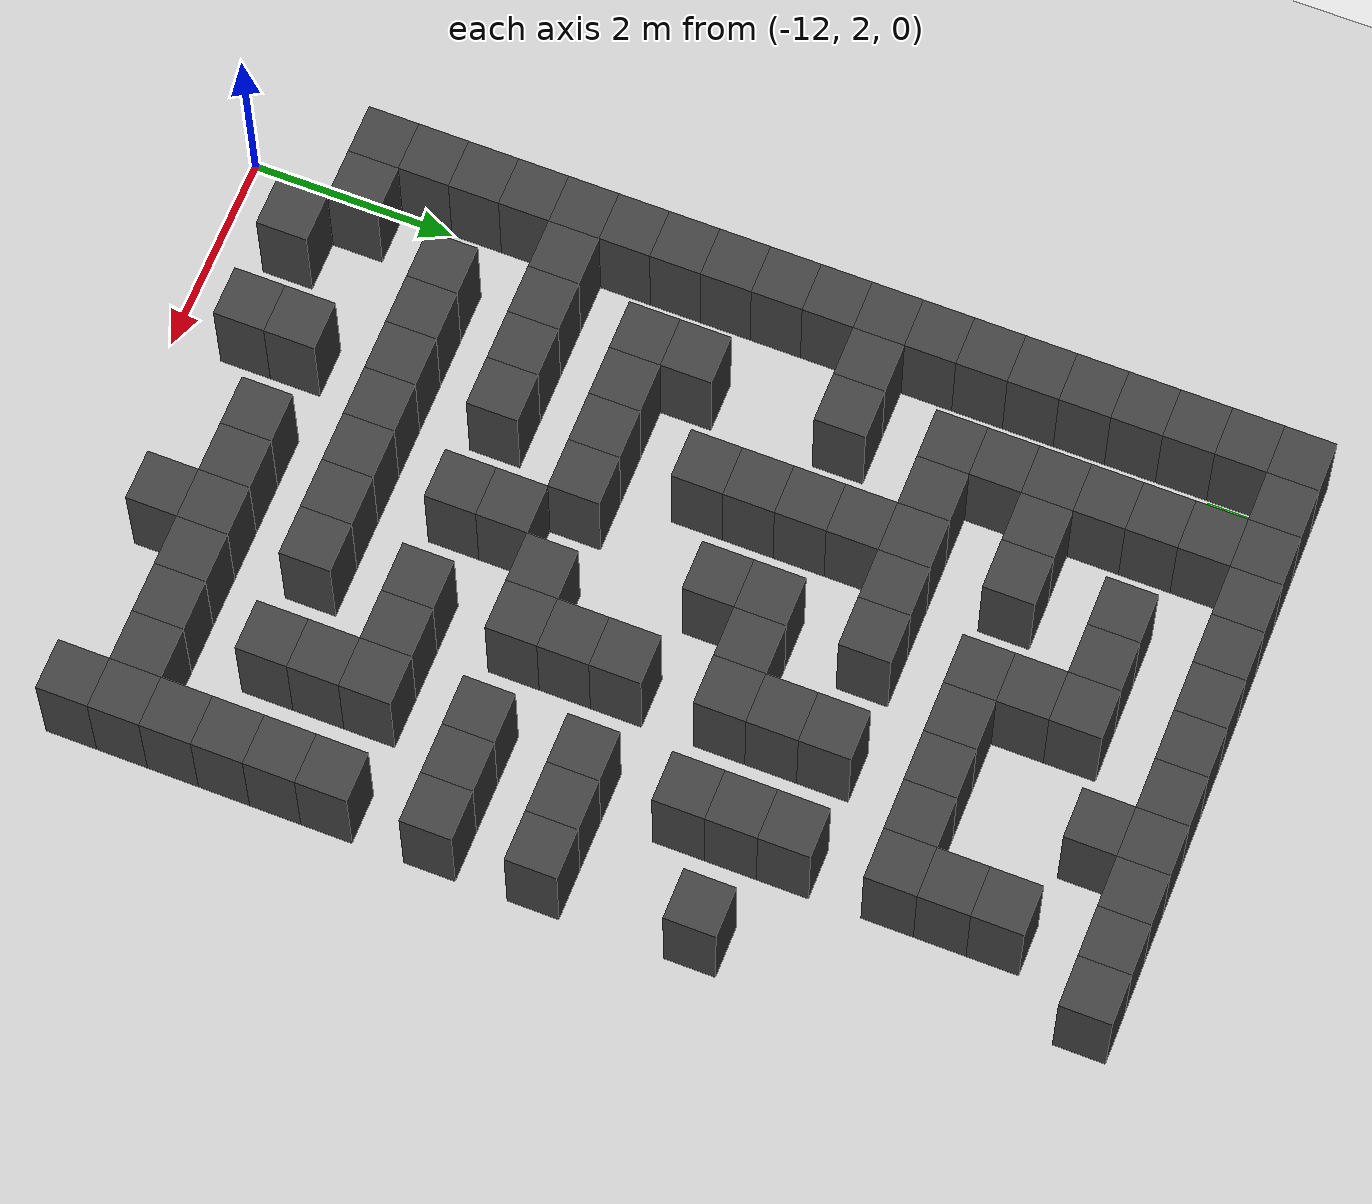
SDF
<sdf version="1.7">
 <world name="map_15293">
  <model name="ground_plane">
   <static>true</static>
   <link name="link">
    <collision name="collision">
     <geometry><plane><normal>0 0 1</normal><size>200 200</size></plane></geometry>
    </collision>
    <visual name="visual">
     <geometry><plane><normal>0 0 1</normal><size>200 200</size></plane></geometry>
     <material><ambient>0.8 0.8 0.8 1</ambient><diffuse>0.8 0.8 0.8 1</diffuse></material>
    </visual>
   </link>
  </model>
  <model name="maze_environment">
   <static>true</static>
   <link name="wall_0">
    <pose>-12.250 12.250 0.500 0 0 0</pose>
    <collision name="col"><geometry><box><size>0.5 0.5 1.0</size></box></geometry></collision>
    <visual name="vis">
     <geometry><box><size>0.5 0.5 1.0</size></box></geometry>
     <material><ambient>0.15 0.15 0.15 1</ambient><diffuse>0.25 0.25 0.25 1</diffuse></material>
    </visual>
   </link>
   <link name="wall_1">
    <pose>-11.750 12.250 0.500 0 0 0</pose>
    <collision name="col"><geometry><box><size>0.5 0.5 1.0</size></box></geometry></collision>
    <visual name="vis">
     <geometry><box><size>0.5 0.5 1.0</size></box></geometry>
     <material><ambient>0.15 0.15 0.15 1</ambient><diffuse>0.25 0.25 0.25 1</diffuse></material>
    </visual>
   </link>
   <link name="wall_2">
    <pose>-11.250 12.250 0.500 0 0 0</pose>
    <collision name="col"><geometry><box><size>0.5 0.5 1.0</size></box></geometry></collision>
    <visual name="vis">
     <geometry><box><size>0.5 0.5 1.0</size></box></geometry>
     <material><ambient>0.15 0.15 0.15 1</ambient><diffuse>0.25 0.25 0.25 1</diffuse></material>
    </visual>
   </link>
   <link name="wall_3">
    <pose>-10.750 12.250 0.500 0 0 0</pose>
    <collision name="col"><geometry><box><size>0.5 0.5 1.0</size></box></geometry></collision>
    <visual name="vis">
     <geometry><box><size>0.5 0.5 1.0</size></box></geometry>
     <material><ambient>0.15 0.15 0.15 1</ambient><diffuse>0.25 0.25 0.25 1</diffuse></material>
    </visual>
   </link>
   <link name="wall_4">
    <pose>-10.250 12.250 0.500 0 0 0</pose>
    <collision name="col"><geometry><box><size>0.5 0.5 1.0</size></box></geometry></collision>
    <visual name="vis">
     <geometry><box><size>0.5 0.5 1.0</size></box></geometry>
     <material><ambient>0.15 0.15 0.15 1</ambient><diffuse>0.25 0.25 0.25 1</diffuse></material>
    </visual>
   </link>
   <link name="wall_5">
    <pose>-9.750 12.250 0.500 0 0 0</pose>
    <collision name="col"><geometry><box><size>0.5 0.5 1.0</size></box></geometry></collision>
    <visual name="vis">
     <geometry><box><size>0.5 0.5 1.0</size></box></geometry>
     <material><ambient>0.15 0.15 0.15 1</ambient><diffuse>0.25 0.25 0.25 1</diffuse></material>
    </visual>
   </link>
   <link name="wall_6">
    <pose>-9.250 12.250 0.500 0 0 0</pose>
    <collision name="col"><geometry><box><size>0.5 0.5 1.0</size></box></geometry></collision>
    <visual name="vis">
     <geometry><box><size>0.5 0.5 1.0</size></box></geometry>
     <material><ambient>0.15 0.15 0.15 1</ambient><diffuse>0.25 0.25 0.25 1</diffuse></material>
    </visual>
   </link>
   <link name="wall_7">
    <pose>-8.750 12.250 0.500 0 0 0</pose>
    <collision name="col"><geometry><box><size>0.5 0.5 1.0</size></box></geometry></collision>
    <visual name="vis">
     <geometry><box><size>0.5 0.5 1.0</size></box></geometry>
     <material><ambient>0.15 0.15 0.15 1</ambient><diffuse>0.25 0.25 0.25 1</diffuse></material>
    </visual>
   </link>
   <link name="wall_8">
    <pose>-8.250 12.250 0.500 0 0 0</pose>
    <collision name="col"><geometry><box><size>0.5 0.5 1.0</size></box></geometry></collision>
    <visual name="vis">
     <geometry><box><size>0.5 0.5 1.0</size></box></geometry>
     <material><ambient>0.15 0.15 0.15 1</ambient><diffuse>0.25 0.25 0.25 1</diffuse></material>
    </visual>
   </link>
   <link name="wall_9">
    <pose>-7.750 12.250 0.500 0 0 0</pose>
    <collision name="col"><geometry><box><size>0.5 0.5 1.0</size></box></geometry></collision>
    <visual name="vis">
     <geometry><box><size>0.5 0.5 1.0</size></box></geometry>
     <material><ambient>0.15 0.15 0.15 1</ambient><diffuse>0.25 0.25 0.25 1</diffuse></material>
    </visual>
   </link>
   <link name="wall_10">
    <pose>-7.250 12.250 0.500 0 0 0</pose>
    <collision name="col"><geometry><box><size>0.5 0.5 1.0</size></box></geometry></collision>
    <visual name="vis">
     <geometry><box><size>0.5 0.5 1.0</size></box></geometry>
     <material><ambient>0.15 0.15 0.15 1</ambient><diffuse>0.25 0.25 0.25 1</diffuse></material>
    </visual>
   </link>
   <link name="wall_11">
    <pose>-6.750 12.250 0.500 0 0 0</pose>
    <collision name="col"><geometry><box><size>0.5 0.5 1.0</size></box></geometry></collision>
    <visual name="vis">
     <geometry><box><size>0.5 0.5 1.0</size></box></geometry>
     <material><ambient>0.15 0.15 0.15 1</ambient><diffuse>0.25 0.25 0.25 1</diffuse></material>
    </visual>
   </link>
   <link name="wall_50">
    <pose>-12.250 11.750 0.500 0 0 0</pose>
    <collision name="col"><geometry><box><size>0.5 0.5 1.0</size></box></geometry></collision>
    <visual name="vis">
     <geometry><box><size>0.5 0.5 1.0</size></box></geometry>
     <material><ambient>0.15 0.15 0.15 1</ambient><diffuse>0.25 0.25 0.25 1</diffuse></material>
    </visual>
   </link>
   <link name="wall_51">
    <pose>-11.250 11.750 0.500 0 0 0</pose>
    <collision name="col"><geometry><box><size>0.5 0.5 1.0</size></box></geometry></collision>
    <visual name="vis">
     <geometry><box><size>0.5 0.5 1.0</size></box></geometry>
     <material><ambient>0.15 0.15 0.15 1</ambient><diffuse>0.25 0.25 0.25 1</diffuse></material>
    </visual>
   </link>
   <link name="wall_52">
    <pose>-8.250 11.750 0.500 0 0 0</pose>
    <collision name="col"><geometry><box><size>0.5 0.5 1.0</size></box></geometry></collision>
    <visual name="vis">
     <geometry><box><size>0.5 0.5 1.0</size></box></geometry>
     <material><ambient>0.15 0.15 0.15 1</ambient><diffuse>0.25 0.25 0.25 1</diffuse></material>
    </visual>
   </link>
   <link name="wall_59">
    <pose>-12.250 11.250 0.500 0 0 0</pose>
    <collision name="col"><geometry><box><size>0.5 0.5 1.0</size></box></geometry></collision>
    <visual name="vis">
     <geometry><box><size>0.5 0.5 1.0</size></box></geometry>
     <material><ambient>0.15 0.15 0.15 1</ambient><diffuse>0.25 0.25 0.25 1</diffuse></material>
    </visual>
   </link>
   <link name="wall_60">
    <pose>-11.250 11.250 0.500 0 0 0</pose>
    <collision name="col"><geometry><box><size>0.5 0.5 1.0</size></box></geometry></collision>
    <visual name="vis">
     <geometry><box><size>0.5 0.5 1.0</size></box></geometry>
     <material><ambient>0.15 0.15 0.15 1</ambient><diffuse>0.25 0.25 0.25 1</diffuse></material>
    </visual>
   </link>
   <link name="wall_61">
    <pose>-10.250 11.250 0.500 0 0 0</pose>
    <collision name="col"><geometry><box><size>0.5 0.5 1.0</size></box></geometry></collision>
    <visual name="vis">
     <geometry><box><size>0.5 0.5 1.0</size></box></geometry>
     <material><ambient>0.15 0.15 0.15 1</ambient><diffuse>0.25 0.25 0.25 1</diffuse></material>
    </visual>
   </link>
   <link name="wall_62">
    <pose>-9.750 11.250 0.500 0 0 0</pose>
    <collision name="col"><geometry><box><size>0.5 0.5 1.0</size></box></geometry></collision>
    <visual name="vis">
     <geometry><box><size>0.5 0.5 1.0</size></box></geometry>
     <material><ambient>0.15 0.15 0.15 1</ambient><diffuse>0.25 0.25 0.25 1</diffuse></material>
    </visual>
   </link>
   <link name="wall_63">
    <pose>-9.250 11.250 0.500 0 0 0</pose>
    <collision name="col"><geometry><box><size>0.5 0.5 1.0</size></box></geometry></collision>
    <visual name="vis">
     <geometry><box><size>0.5 0.5 1.0</size></box></geometry>
     <material><ambient>0.15 0.15 0.15 1</ambient><diffuse>0.25 0.25 0.25 1</diffuse></material>
    </visual>
   </link>
   <link name="wall_64">
    <pose>-7.250 11.250 0.500 0 0 0</pose>
    <collision name="col"><geometry><box><size>0.5 0.5 1.0</size></box></geometry></collision>
    <visual name="vis">
     <geometry><box><size>0.5 0.5 1.0</size></box></geometry>
     <material><ambient>0.15 0.15 0.15 1</ambient><diffuse>0.25 0.25 0.25 1</diffuse></material>
    </visual>
   </link>
   <link name="wall_87">
    <pose>-12.250 10.750 0.500 0 0 0</pose>
    <collision name="col"><geometry><box><size>0.5 0.5 1.0</size></box></geometry></collision>
    <visual name="vis">
     <geometry><box><size>0.5 0.5 1.0</size></box></geometry>
     <material><ambient>0.15 0.15 0.15 1</ambient><diffuse>0.25 0.25 0.25 1</diffuse></material>
    </visual>
   </link>
   <link name="wall_88">
    <pose>-11.250 10.750 0.500 0 0 0</pose>
    <collision name="col"><geometry><box><size>0.5 0.5 1.0</size></box></geometry></collision>
    <visual name="vis">
     <geometry><box><size>0.5 0.5 1.0</size></box></geometry>
     <material><ambient>0.15 0.15 0.15 1</ambient><diffuse>0.25 0.25 0.25 1</diffuse></material>
    </visual>
   </link>
   <link name="wall_89">
    <pose>-9.250 10.750 0.500 0 0 0</pose>
    <collision name="col"><geometry><box><size>0.5 0.5 1.0</size></box></geometry></collision>
    <visual name="vis">
     <geometry><box><size>0.5 0.5 1.0</size></box></geometry>
     <material><ambient>0.15 0.15 0.15 1</ambient><diffuse>0.25 0.25 0.25 1</diffuse></material>
    </visual>
   </link>
   <link name="wall_90">
    <pose>-7.250 10.750 0.500 0 0 0</pose>
    <collision name="col"><geometry><box><size>0.5 0.5 1.0</size></box></geometry></collision>
    <visual name="vis">
     <geometry><box><size>0.5 0.5 1.0</size></box></geometry>
     <material><ambient>0.15 0.15 0.15 1</ambient><diffuse>0.25 0.25 0.25 1</diffuse></material>
    </visual>
   </link>
   <link name="wall_101">
    <pose>-12.250 10.250 0.500 0 0 0</pose>
    <collision name="col"><geometry><box><size>0.5 0.5 1.0</size></box></geometry></collision>
    <visual name="vis">
     <geometry><box><size>0.5 0.5 1.0</size></box></geometry>
     <material><ambient>0.15 0.15 0.15 1</ambient><diffuse>0.25 0.25 0.25 1</diffuse></material>
    </visual>
   </link>
   <link name="wall_102">
    <pose>-11.250 10.250 0.500 0 0 0</pose>
    <collision name="col"><geometry><box><size>0.5 0.5 1.0</size></box></geometry></collision>
    <visual name="vis">
     <geometry><box><size>0.5 0.5 1.0</size></box></geometry>
     <material><ambient>0.15 0.15 0.15 1</ambient><diffuse>0.25 0.25 0.25 1</diffuse></material>
    </visual>
   </link>
   <link name="wall_103">
    <pose>-10.750 10.250 0.500 0 0 0</pose>
    <collision name="col"><geometry><box><size>0.5 0.5 1.0</size></box></geometry></collision>
    <visual name="vis">
     <geometry><box><size>0.5 0.5 1.0</size></box></geometry>
     <material><ambient>0.15 0.15 0.15 1</ambient><diffuse>0.25 0.25 0.25 1</diffuse></material>
    </visual>
   </link>
   <link name="wall_104">
    <pose>-10.250 10.250 0.500 0 0 0</pose>
    <collision name="col"><geometry><box><size>0.5 0.5 1.0</size></box></geometry></collision>
    <visual name="vis">
     <geometry><box><size>0.5 0.5 1.0</size></box></geometry>
     <material><ambient>0.15 0.15 0.15 1</ambient><diffuse>0.25 0.25 0.25 1</diffuse></material>
    </visual>
   </link>
   <link name="wall_105">
    <pose>-9.250 10.250 0.500 0 0 0</pose>
    <collision name="col"><geometry><box><size>0.5 0.5 1.0</size></box></geometry></collision>
    <visual name="vis">
     <geometry><box><size>0.5 0.5 1.0</size></box></geometry>
     <material><ambient>0.15 0.15 0.15 1</ambient><diffuse>0.25 0.25 0.25 1</diffuse></material>
    </visual>
   </link>
   <link name="wall_106">
    <pose>-8.750 10.250 0.500 0 0 0</pose>
    <collision name="col"><geometry><box><size>0.5 0.5 1.0</size></box></geometry></collision>
    <visual name="vis">
     <geometry><box><size>0.5 0.5 1.0</size></box></geometry>
     <material><ambient>0.15 0.15 0.15 1</ambient><diffuse>0.25 0.25 0.25 1</diffuse></material>
    </visual>
   </link>
   <link name="wall_107">
    <pose>-8.250 10.250 0.500 0 0 0</pose>
    <collision name="col"><geometry><box><size>0.5 0.5 1.0</size></box></geometry></collision>
    <visual name="vis">
     <geometry><box><size>0.5 0.5 1.0</size></box></geometry>
     <material><ambient>0.15 0.15 0.15 1</ambient><diffuse>0.25 0.25 0.25 1</diffuse></material>
    </visual>
   </link>
   <link name="wall_108">
    <pose>-7.750 10.250 0.500 0 0 0</pose>
    <collision name="col"><geometry><box><size>0.5 0.5 1.0</size></box></geometry></collision>
    <visual name="vis">
     <geometry><box><size>0.5 0.5 1.0</size></box></geometry>
     <material><ambient>0.15 0.15 0.15 1</ambient><diffuse>0.25 0.25 0.25 1</diffuse></material>
    </visual>
   </link>
   <link name="wall_109">
    <pose>-7.250 10.250 0.500 0 0 0</pose>
    <collision name="col"><geometry><box><size>0.5 0.5 1.0</size></box></geometry></collision>
    <visual name="vis">
     <geometry><box><size>0.5 0.5 1.0</size></box></geometry>
     <material><ambient>0.15 0.15 0.15 1</ambient><diffuse>0.25 0.25 0.25 1</diffuse></material>
    </visual>
   </link>
   <link name="wall_134">
    <pose>-12.250 9.750 0.500 0 0 0</pose>
    <collision name="col"><geometry><box><size>0.5 0.5 1.0</size></box></geometry></collision>
    <visual name="vis">
     <geometry><box><size>0.5 0.5 1.0</size></box></geometry>
     <material><ambient>0.15 0.15 0.15 1</ambient><diffuse>0.25 0.25 0.25 1</diffuse></material>
    </visual>
   </link>
   <link name="wall_135">
    <pose>-11.250 9.750 0.500 0 0 0</pose>
    <collision name="col"><geometry><box><size>0.5 0.5 1.0</size></box></geometry></collision>
    <visual name="vis">
     <geometry><box><size>0.5 0.5 1.0</size></box></geometry>
     <material><ambient>0.15 0.15 0.15 1</ambient><diffuse>0.25 0.25 0.25 1</diffuse></material>
    </visual>
   </link>
   <link name="wall_145">
    <pose>-12.250 9.250 0.500 0 0 0</pose>
    <collision name="col"><geometry><box><size>0.5 0.5 1.0</size></box></geometry></collision>
    <visual name="vis">
     <geometry><box><size>0.5 0.5 1.0</size></box></geometry>
     <material><ambient>0.15 0.15 0.15 1</ambient><diffuse>0.25 0.25 0.25 1</diffuse></material>
    </visual>
   </link>
   <link name="wall_146">
    <pose>-11.250 9.250 0.500 0 0 0</pose>
    <collision name="col"><geometry><box><size>0.5 0.5 1.0</size></box></geometry></collision>
    <visual name="vis">
     <geometry><box><size>0.5 0.5 1.0</size></box></geometry>
     <material><ambient>0.15 0.15 0.15 1</ambient><diffuse>0.25 0.25 0.25 1</diffuse></material>
    </visual>
   </link>
   <link name="wall_147">
    <pose>-10.750 9.250 0.500 0 0 0</pose>
    <collision name="col"><geometry><box><size>0.5 0.5 1.0</size></box></geometry></collision>
    <visual name="vis">
     <geometry><box><size>0.5 0.5 1.0</size></box></geometry>
     <material><ambient>0.15 0.15 0.15 1</ambient><diffuse>0.25 0.25 0.25 1</diffuse></material>
    </visual>
   </link>
   <link name="wall_148">
    <pose>-10.250 9.250 0.500 0 0 0</pose>
    <collision name="col"><geometry><box><size>0.5 0.5 1.0</size></box></geometry></collision>
    <visual name="vis">
     <geometry><box><size>0.5 0.5 1.0</size></box></geometry>
     <material><ambient>0.15 0.15 0.15 1</ambient><diffuse>0.25 0.25 0.25 1</diffuse></material>
    </visual>
   </link>
   <link name="wall_149">
    <pose>-9.750 9.250 0.500 0 0 0</pose>
    <collision name="col"><geometry><box><size>0.5 0.5 1.0</size></box></geometry></collision>
    <visual name="vis">
     <geometry><box><size>0.5 0.5 1.0</size></box></geometry>
     <material><ambient>0.15 0.15 0.15 1</ambient><diffuse>0.25 0.25 0.25 1</diffuse></material>
    </visual>
   </link>
   <link name="wall_150">
    <pose>-9.250 9.250 0.500 0 0 0</pose>
    <collision name="col"><geometry><box><size>0.5 0.5 1.0</size></box></geometry></collision>
    <visual name="vis">
     <geometry><box><size>0.5 0.5 1.0</size></box></geometry>
     <material><ambient>0.15 0.15 0.15 1</ambient><diffuse>0.25 0.25 0.25 1</diffuse></material>
    </visual>
   </link>
   <link name="wall_151">
    <pose>-8.250 9.250 0.500 0 0 0</pose>
    <collision name="col"><geometry><box><size>0.5 0.5 1.0</size></box></geometry></collision>
    <visual name="vis">
     <geometry><box><size>0.5 0.5 1.0</size></box></geometry>
     <material><ambient>0.15 0.15 0.15 1</ambient><diffuse>0.25 0.25 0.25 1</diffuse></material>
    </visual>
   </link>
   <link name="wall_152">
    <pose>-7.250 9.250 0.500 0 0 0</pose>
    <collision name="col"><geometry><box><size>0.5 0.5 1.0</size></box></geometry></collision>
    <visual name="vis">
     <geometry><box><size>0.5 0.5 1.0</size></box></geometry>
     <material><ambient>0.15 0.15 0.15 1</ambient><diffuse>0.25 0.25 0.25 1</diffuse></material>
    </visual>
   </link>
   <link name="wall_177">
    <pose>-12.250 8.750 0.500 0 0 0</pose>
    <collision name="col"><geometry><box><size>0.5 0.5 1.0</size></box></geometry></collision>
    <visual name="vis">
     <geometry><box><size>0.5 0.5 1.0</size></box></geometry>
     <material><ambient>0.15 0.15 0.15 1</ambient><diffuse>0.25 0.25 0.25 1</diffuse></material>
    </visual>
   </link>
   <link name="wall_178">
    <pose>-10.250 8.750 0.500 0 0 0</pose>
    <collision name="col"><geometry><box><size>0.5 0.5 1.0</size></box></geometry></collision>
    <visual name="vis">
     <geometry><box><size>0.5 0.5 1.0</size></box></geometry>
     <material><ambient>0.15 0.15 0.15 1</ambient><diffuse>0.25 0.25 0.25 1</diffuse></material>
    </visual>
   </link>
   <link name="wall_179">
    <pose>-8.250 8.750 0.500 0 0 0</pose>
    <collision name="col"><geometry><box><size>0.5 0.5 1.0</size></box></geometry></collision>
    <visual name="vis">
     <geometry><box><size>0.5 0.5 1.0</size></box></geometry>
     <material><ambient>0.15 0.15 0.15 1</ambient><diffuse>0.25 0.25 0.25 1</diffuse></material>
    </visual>
   </link>
   <link name="wall_180">
    <pose>-7.250 8.750 0.500 0 0 0</pose>
    <collision name="col"><geometry><box><size>0.5 0.5 1.0</size></box></geometry></collision>
    <visual name="vis">
     <geometry><box><size>0.5 0.5 1.0</size></box></geometry>
     <material><ambient>0.15 0.15 0.15 1</ambient><diffuse>0.25 0.25 0.25 1</diffuse></material>
    </visual>
   </link>
   <link name="wall_181">
    <pose>-6.250 8.750 0.500 0 0 0</pose>
    <collision name="col"><geometry><box><size>0.5 0.5 1.0</size></box></geometry></collision>
    <visual name="vis">
     <geometry><box><size>0.5 0.5 1.0</size></box></geometry>
     <material><ambient>0.15 0.15 0.15 1</ambient><diffuse>0.25 0.25 0.25 1</diffuse></material>
    </visual>
   </link>
   <link name="wall_192">
    <pose>-12.250 8.250 0.500 0 0 0</pose>
    <collision name="col"><geometry><box><size>0.5 0.5 1.0</size></box></geometry></collision>
    <visual name="vis">
     <geometry><box><size>0.5 0.5 1.0</size></box></geometry>
     <material><ambient>0.15 0.15 0.15 1</ambient><diffuse>0.25 0.25 0.25 1</diffuse></material>
    </visual>
   </link>
   <link name="wall_193">
    <pose>-11.750 8.250 0.500 0 0 0</pose>
    <collision name="col"><geometry><box><size>0.5 0.5 1.0</size></box></geometry></collision>
    <visual name="vis">
     <geometry><box><size>0.5 0.5 1.0</size></box></geometry>
     <material><ambient>0.15 0.15 0.15 1</ambient><diffuse>0.25 0.25 0.25 1</diffuse></material>
    </visual>
   </link>
   <link name="wall_194">
    <pose>-11.250 8.250 0.500 0 0 0</pose>
    <collision name="col"><geometry><box><size>0.5 0.5 1.0</size></box></geometry></collision>
    <visual name="vis">
     <geometry><box><size>0.5 0.5 1.0</size></box></geometry>
     <material><ambient>0.15 0.15 0.15 1</ambient><diffuse>0.25 0.25 0.25 1</diffuse></material>
    </visual>
   </link>
   <link name="wall_195">
    <pose>-10.250 8.250 0.500 0 0 0</pose>
    <collision name="col"><geometry><box><size>0.5 0.5 1.0</size></box></geometry></collision>
    <visual name="vis">
     <geometry><box><size>0.5 0.5 1.0</size></box></geometry>
     <material><ambient>0.15 0.15 0.15 1</ambient><diffuse>0.25 0.25 0.25 1</diffuse></material>
    </visual>
   </link>
   <link name="wall_196">
    <pose>-9.250 8.250 0.500 0 0 0</pose>
    <collision name="col"><geometry><box><size>0.5 0.5 1.0</size></box></geometry></collision>
    <visual name="vis">
     <geometry><box><size>0.5 0.5 1.0</size></box></geometry>
     <material><ambient>0.15 0.15 0.15 1</ambient><diffuse>0.25 0.25 0.25 1</diffuse></material>
    </visual>
   </link>
   <link name="wall_197">
    <pose>-8.750 8.250 0.500 0 0 0</pose>
    <collision name="col"><geometry><box><size>0.5 0.5 1.0</size></box></geometry></collision>
    <visual name="vis">
     <geometry><box><size>0.5 0.5 1.0</size></box></geometry>
     <material><ambient>0.15 0.15 0.15 1</ambient><diffuse>0.25 0.25 0.25 1</diffuse></material>
    </visual>
   </link>
   <link name="wall_198">
    <pose>-8.250 8.250 0.500 0 0 0</pose>
    <collision name="col"><geometry><box><size>0.5 0.5 1.0</size></box></geometry></collision>
    <visual name="vis">
     <geometry><box><size>0.5 0.5 1.0</size></box></geometry>
     <material><ambient>0.15 0.15 0.15 1</ambient><diffuse>0.25 0.25 0.25 1</diffuse></material>
    </visual>
   </link>
   <link name="wall_199">
    <pose>-7.250 8.250 0.500 0 0 0</pose>
    <collision name="col"><geometry><box><size>0.5 0.5 1.0</size></box></geometry></collision>
    <visual name="vis">
     <geometry><box><size>0.5 0.5 1.0</size></box></geometry>
     <material><ambient>0.15 0.15 0.15 1</ambient><diffuse>0.25 0.25 0.25 1</diffuse></material>
    </visual>
   </link>
   <link name="wall_223">
    <pose>-12.250 7.750 0.500 0 0 0</pose>
    <collision name="col"><geometry><box><size>0.5 0.5 1.0</size></box></geometry></collision>
    <visual name="vis">
     <geometry><box><size>0.5 0.5 1.0</size></box></geometry>
     <material><ambient>0.15 0.15 0.15 1</ambient><diffuse>0.25 0.25 0.25 1</diffuse></material>
    </visual>
   </link>
   <link name="wall_224">
    <pose>-10.250 7.750 0.500 0 0 0</pose>
    <collision name="col"><geometry><box><size>0.5 0.5 1.0</size></box></geometry></collision>
    <visual name="vis">
     <geometry><box><size>0.5 0.5 1.0</size></box></geometry>
     <material><ambient>0.15 0.15 0.15 1</ambient><diffuse>0.25 0.25 0.25 1</diffuse></material>
    </visual>
   </link>
   <link name="wall_225">
    <pose>-9.250 7.750 0.500 0 0 0</pose>
    <collision name="col"><geometry><box><size>0.5 0.5 1.0</size></box></geometry></collision>
    <visual name="vis">
     <geometry><box><size>0.5 0.5 1.0</size></box></geometry>
     <material><ambient>0.15 0.15 0.15 1</ambient><diffuse>0.25 0.25 0.25 1</diffuse></material>
    </visual>
   </link>
   <link name="wall_239">
    <pose>-12.250 7.250 0.500 0 0 0</pose>
    <collision name="col"><geometry><box><size>0.5 0.5 1.0</size></box></geometry></collision>
    <visual name="vis">
     <geometry><box><size>0.5 0.5 1.0</size></box></geometry>
     <material><ambient>0.15 0.15 0.15 1</ambient><diffuse>0.25 0.25 0.25 1</diffuse></material>
    </visual>
   </link>
   <link name="wall_240">
    <pose>-10.250 7.250 0.500 0 0 0</pose>
    <collision name="col"><geometry><box><size>0.5 0.5 1.0</size></box></geometry></collision>
    <visual name="vis">
     <geometry><box><size>0.5 0.5 1.0</size></box></geometry>
     <material><ambient>0.15 0.15 0.15 1</ambient><diffuse>0.25 0.25 0.25 1</diffuse></material>
    </visual>
   </link>
   <link name="wall_241">
    <pose>-8.250 7.250 0.500 0 0 0</pose>
    <collision name="col"><geometry><box><size>0.5 0.5 1.0</size></box></geometry></collision>
    <visual name="vis">
     <geometry><box><size>0.5 0.5 1.0</size></box></geometry>
     <material><ambient>0.15 0.15 0.15 1</ambient><diffuse>0.25 0.25 0.25 1</diffuse></material>
    </visual>
   </link>
   <link name="wall_242">
    <pose>-7.250 7.250 0.500 0 0 0</pose>
    <collision name="col"><geometry><box><size>0.5 0.5 1.0</size></box></geometry></collision>
    <visual name="vis">
     <geometry><box><size>0.5 0.5 1.0</size></box></geometry>
     <material><ambient>0.15 0.15 0.15 1</ambient><diffuse>0.25 0.25 0.25 1</diffuse></material>
    </visual>
   </link>
   <link name="wall_243">
    <pose>-6.750 7.250 0.500 0 0 0</pose>
    <collision name="col"><geometry><box><size>0.5 0.5 1.0</size></box></geometry></collision>
    <visual name="vis">
     <geometry><box><size>0.5 0.5 1.0</size></box></geometry>
     <material><ambient>0.15 0.15 0.15 1</ambient><diffuse>0.25 0.25 0.25 1</diffuse></material>
    </visual>
   </link>
   <link name="wall_244">
    <pose>-6.250 7.250 0.500 0 0 0</pose>
    <collision name="col"><geometry><box><size>0.5 0.5 1.0</size></box></geometry></collision>
    <visual name="vis">
     <geometry><box><size>0.5 0.5 1.0</size></box></geometry>
     <material><ambient>0.15 0.15 0.15 1</ambient><diffuse>0.25 0.25 0.25 1</diffuse></material>
    </visual>
   </link>
   <link name="wall_269">
    <pose>-12.250 6.750 0.500 0 0 0</pose>
    <collision name="col"><geometry><box><size>0.5 0.5 1.0</size></box></geometry></collision>
    <visual name="vis">
     <geometry><box><size>0.5 0.5 1.0</size></box></geometry>
     <material><ambient>0.15 0.15 0.15 1</ambient><diffuse>0.25 0.25 0.25 1</diffuse></material>
    </visual>
   </link>
   <link name="wall_270">
    <pose>-11.250 6.750 0.500 0 0 0</pose>
    <collision name="col"><geometry><box><size>0.5 0.5 1.0</size></box></geometry></collision>
    <visual name="vis">
     <geometry><box><size>0.5 0.5 1.0</size></box></geometry>
     <material><ambient>0.15 0.15 0.15 1</ambient><diffuse>0.25 0.25 0.25 1</diffuse></material>
    </visual>
   </link>
   <link name="wall_271">
    <pose>-8.250 6.750 0.500 0 0 0</pose>
    <collision name="col"><geometry><box><size>0.5 0.5 1.0</size></box></geometry></collision>
    <visual name="vis">
     <geometry><box><size>0.5 0.5 1.0</size></box></geometry>
     <material><ambient>0.15 0.15 0.15 1</ambient><diffuse>0.25 0.25 0.25 1</diffuse></material>
    </visual>
   </link>
   <link name="wall_283">
    <pose>-12.250 6.250 0.500 0 0 0</pose>
    <collision name="col"><geometry><box><size>0.5 0.5 1.0</size></box></geometry></collision>
    <visual name="vis">
     <geometry><box><size>0.5 0.5 1.0</size></box></geometry>
     <material><ambient>0.15 0.15 0.15 1</ambient><diffuse>0.25 0.25 0.25 1</diffuse></material>
    </visual>
   </link>
   <link name="wall_284">
    <pose>-11.250 6.250 0.500 0 0 0</pose>
    <collision name="col"><geometry><box><size>0.5 0.5 1.0</size></box></geometry></collision>
    <visual name="vis">
     <geometry><box><size>0.5 0.5 1.0</size></box></geometry>
     <material><ambient>0.15 0.15 0.15 1</ambient><diffuse>0.25 0.25 0.25 1</diffuse></material>
    </visual>
   </link>
   <link name="wall_285">
    <pose>-10.750 6.250 0.500 0 0 0</pose>
    <collision name="col"><geometry><box><size>0.5 0.5 1.0</size></box></geometry></collision>
    <visual name="vis">
     <geometry><box><size>0.5 0.5 1.0</size></box></geometry>
     <material><ambient>0.15 0.15 0.15 1</ambient><diffuse>0.25 0.25 0.25 1</diffuse></material>
    </visual>
   </link>
   <link name="wall_286">
    <pose>-10.250 6.250 0.500 0 0 0</pose>
    <collision name="col"><geometry><box><size>0.5 0.5 1.0</size></box></geometry></collision>
    <visual name="vis">
     <geometry><box><size>0.5 0.5 1.0</size></box></geometry>
     <material><ambient>0.15 0.15 0.15 1</ambient><diffuse>0.25 0.25 0.25 1</diffuse></material>
    </visual>
   </link>
   <link name="wall_287">
    <pose>-9.750 6.250 0.500 0 0 0</pose>
    <collision name="col"><geometry><box><size>0.5 0.5 1.0</size></box></geometry></collision>
    <visual name="vis">
     <geometry><box><size>0.5 0.5 1.0</size></box></geometry>
     <material><ambient>0.15 0.15 0.15 1</ambient><diffuse>0.25 0.25 0.25 1</diffuse></material>
    </visual>
   </link>
   <link name="wall_288">
    <pose>-8.750 6.250 0.500 0 0 0</pose>
    <collision name="col"><geometry><box><size>0.5 0.5 1.0</size></box></geometry></collision>
    <visual name="vis">
     <geometry><box><size>0.5 0.5 1.0</size></box></geometry>
     <material><ambient>0.15 0.15 0.15 1</ambient><diffuse>0.25 0.25 0.25 1</diffuse></material>
    </visual>
   </link>
   <link name="wall_289">
    <pose>-8.250 6.250 0.500 0 0 0</pose>
    <collision name="col"><geometry><box><size>0.5 0.5 1.0</size></box></geometry></collision>
    <visual name="vis">
     <geometry><box><size>0.5 0.5 1.0</size></box></geometry>
     <material><ambient>0.15 0.15 0.15 1</ambient><diffuse>0.25 0.25 0.25 1</diffuse></material>
    </visual>
   </link>
   <link name="wall_290">
    <pose>-7.250 6.250 0.500 0 0 0</pose>
    <collision name="col"><geometry><box><size>0.5 0.5 1.0</size></box></geometry></collision>
    <visual name="vis">
     <geometry><box><size>0.5 0.5 1.0</size></box></geometry>
     <material><ambient>0.15 0.15 0.15 1</ambient><diffuse>0.25 0.25 0.25 1</diffuse></material>
    </visual>
   </link>
   <link name="wall_291">
    <pose>-6.750 6.250 0.500 0 0 0</pose>
    <collision name="col"><geometry><box><size>0.5 0.5 1.0</size></box></geometry></collision>
    <visual name="vis">
     <geometry><box><size>0.5 0.5 1.0</size></box></geometry>
     <material><ambient>0.15 0.15 0.15 1</ambient><diffuse>0.25 0.25 0.25 1</diffuse></material>
    </visual>
   </link>
   <link name="wall_292">
    <pose>-6.250 6.250 0.500 0 0 0</pose>
    <collision name="col"><geometry><box><size>0.5 0.5 1.0</size></box></geometry></collision>
    <visual name="vis">
     <geometry><box><size>0.5 0.5 1.0</size></box></geometry>
     <material><ambient>0.15 0.15 0.15 1</ambient><diffuse>0.25 0.25 0.25 1</diffuse></material>
    </visual>
   </link>
   <link name="wall_318">
    <pose>-12.250 5.750 0.500 0 0 0</pose>
    <collision name="col"><geometry><box><size>0.5 0.5 1.0</size></box></geometry></collision>
    <visual name="vis">
     <geometry><box><size>0.5 0.5 1.0</size></box></geometry>
     <material><ambient>0.15 0.15 0.15 1</ambient><diffuse>0.25 0.25 0.25 1</diffuse></material>
    </visual>
   </link>
   <link name="wall_319">
    <pose>-9.250 5.750 0.500 0 0 0</pose>
    <collision name="col"><geometry><box><size>0.5 0.5 1.0</size></box></geometry></collision>
    <visual name="vis">
     <geometry><box><size>0.5 0.5 1.0</size></box></geometry>
     <material><ambient>0.15 0.15 0.15 1</ambient><diffuse>0.25 0.25 0.25 1</diffuse></material>
    </visual>
   </link>
   <link name="wall_328">
    <pose>-12.250 5.250 0.500 0 0 0</pose>
    <collision name="col"><geometry><box><size>0.5 0.5 1.0</size></box></geometry></collision>
    <visual name="vis">
     <geometry><box><size>0.5 0.5 1.0</size></box></geometry>
     <material><ambient>0.15 0.15 0.15 1</ambient><diffuse>0.25 0.25 0.25 1</diffuse></material>
    </visual>
   </link>
   <link name="wall_329">
    <pose>-11.750 5.250 0.500 0 0 0</pose>
    <collision name="col"><geometry><box><size>0.5 0.5 1.0</size></box></geometry></collision>
    <visual name="vis">
     <geometry><box><size>0.5 0.5 1.0</size></box></geometry>
     <material><ambient>0.15 0.15 0.15 1</ambient><diffuse>0.25 0.25 0.25 1</diffuse></material>
    </visual>
   </link>
   <link name="wall_330">
    <pose>-11.250 5.250 0.500 0 0 0</pose>
    <collision name="col"><geometry><box><size>0.5 0.5 1.0</size></box></geometry></collision>
    <visual name="vis">
     <geometry><box><size>0.5 0.5 1.0</size></box></geometry>
     <material><ambient>0.15 0.15 0.15 1</ambient><diffuse>0.25 0.25 0.25 1</diffuse></material>
    </visual>
   </link>
   <link name="wall_331">
    <pose>-10.750 5.250 0.500 0 0 0</pose>
    <collision name="col"><geometry><box><size>0.5 0.5 1.0</size></box></geometry></collision>
    <visual name="vis">
     <geometry><box><size>0.5 0.5 1.0</size></box></geometry>
     <material><ambient>0.15 0.15 0.15 1</ambient><diffuse>0.25 0.25 0.25 1</diffuse></material>
    </visual>
   </link>
   <link name="wall_332">
    <pose>-10.250 5.250 0.500 0 0 0</pose>
    <collision name="col"><geometry><box><size>0.5 0.5 1.0</size></box></geometry></collision>
    <visual name="vis">
     <geometry><box><size>0.5 0.5 1.0</size></box></geometry>
     <material><ambient>0.15 0.15 0.15 1</ambient><diffuse>0.25 0.25 0.25 1</diffuse></material>
    </visual>
   </link>
   <link name="wall_333">
    <pose>-9.250 5.250 0.500 0 0 0</pose>
    <collision name="col"><geometry><box><size>0.5 0.5 1.0</size></box></geometry></collision>
    <visual name="vis">
     <geometry><box><size>0.5 0.5 1.0</size></box></geometry>
     <material><ambient>0.15 0.15 0.15 1</ambient><diffuse>0.25 0.25 0.25 1</diffuse></material>
    </visual>
   </link>
   <link name="wall_334">
    <pose>-8.250 5.250 0.500 0 0 0</pose>
    <collision name="col"><geometry><box><size>0.5 0.5 1.0</size></box></geometry></collision>
    <visual name="vis">
     <geometry><box><size>0.5 0.5 1.0</size></box></geometry>
     <material><ambient>0.15 0.15 0.15 1</ambient><diffuse>0.25 0.25 0.25 1</diffuse></material>
    </visual>
   </link>
   <link name="wall_335">
    <pose>-7.750 5.250 0.500 0 0 0</pose>
    <collision name="col"><geometry><box><size>0.5 0.5 1.0</size></box></geometry></collision>
    <visual name="vis">
     <geometry><box><size>0.5 0.5 1.0</size></box></geometry>
     <material><ambient>0.15 0.15 0.15 1</ambient><diffuse>0.25 0.25 0.25 1</diffuse></material>
    </visual>
   </link>
   <link name="wall_336">
    <pose>-7.250 5.250 0.500 0 0 0</pose>
    <collision name="col"><geometry><box><size>0.5 0.5 1.0</size></box></geometry></collision>
    <visual name="vis">
     <geometry><box><size>0.5 0.5 1.0</size></box></geometry>
     <material><ambient>0.15 0.15 0.15 1</ambient><diffuse>0.25 0.25 0.25 1</diffuse></material>
    </visual>
   </link>
   <link name="wall_337">
    <pose>-6.250 5.250 0.500 0 0 0</pose>
    <collision name="col"><geometry><box><size>0.5 0.5 1.0</size></box></geometry></collision>
    <visual name="vis">
     <geometry><box><size>0.5 0.5 1.0</size></box></geometry>
     <material><ambient>0.15 0.15 0.15 1</ambient><diffuse>0.25 0.25 0.25 1</diffuse></material>
    </visual>
   </link>
   <link name="wall_363">
    <pose>-12.250 4.750 0.500 0 0 0</pose>
    <collision name="col"><geometry><box><size>0.5 0.5 1.0</size></box></geometry></collision>
    <visual name="vis">
     <geometry><box><size>0.5 0.5 1.0</size></box></geometry>
     <material><ambient>0.15 0.15 0.15 1</ambient><diffuse>0.25 0.25 0.25 1</diffuse></material>
    </visual>
   </link>
   <link name="wall_364">
    <pose>-7.250 4.750 0.500 0 0 0</pose>
    <collision name="col"><geometry><box><size>0.5 0.5 1.0</size></box></geometry></collision>
    <visual name="vis">
     <geometry><box><size>0.5 0.5 1.0</size></box></geometry>
     <material><ambient>0.15 0.15 0.15 1</ambient><diffuse>0.25 0.25 0.25 1</diffuse></material>
    </visual>
   </link>
   <link name="wall_365">
    <pose>-6.250 4.750 0.500 0 0 0</pose>
    <collision name="col"><geometry><box><size>0.5 0.5 1.0</size></box></geometry></collision>
    <visual name="vis">
     <geometry><box><size>0.5 0.5 1.0</size></box></geometry>
     <material><ambient>0.15 0.15 0.15 1</ambient><diffuse>0.25 0.25 0.25 1</diffuse></material>
    </visual>
   </link>
   <link name="wall_376">
    <pose>-12.250 4.250 0.500 0 0 0</pose>
    <collision name="col"><geometry><box><size>0.5 0.5 1.0</size></box></geometry></collision>
    <visual name="vis">
     <geometry><box><size>0.5 0.5 1.0</size></box></geometry>
     <material><ambient>0.15 0.15 0.15 1</ambient><diffuse>0.25 0.25 0.25 1</diffuse></material>
    </visual>
   </link>
   <link name="wall_377">
    <pose>-11.250 4.250 0.500 0 0 0</pose>
    <collision name="col"><geometry><box><size>0.5 0.5 1.0</size></box></geometry></collision>
    <visual name="vis">
     <geometry><box><size>0.5 0.5 1.0</size></box></geometry>
     <material><ambient>0.15 0.15 0.15 1</ambient><diffuse>0.25 0.25 0.25 1</diffuse></material>
    </visual>
   </link>
   <link name="wall_378">
    <pose>-10.750 4.250 0.500 0 0 0</pose>
    <collision name="col"><geometry><box><size>0.5 0.5 1.0</size></box></geometry></collision>
    <visual name="vis">
     <geometry><box><size>0.5 0.5 1.0</size></box></geometry>
     <material><ambient>0.15 0.15 0.15 1</ambient><diffuse>0.25 0.25 0.25 1</diffuse></material>
    </visual>
   </link>
   <link name="wall_379">
    <pose>-10.250 4.250 0.500 0 0 0</pose>
    <collision name="col"><geometry><box><size>0.5 0.5 1.0</size></box></geometry></collision>
    <visual name="vis">
     <geometry><box><size>0.5 0.5 1.0</size></box></geometry>
     <material><ambient>0.15 0.15 0.15 1</ambient><diffuse>0.25 0.25 0.25 1</diffuse></material>
    </visual>
   </link>
   <link name="wall_380">
    <pose>-9.750 4.250 0.500 0 0 0</pose>
    <collision name="col"><geometry><box><size>0.5 0.5 1.0</size></box></geometry></collision>
    <visual name="vis">
     <geometry><box><size>0.5 0.5 1.0</size></box></geometry>
     <material><ambient>0.15 0.15 0.15 1</ambient><diffuse>0.25 0.25 0.25 1</diffuse></material>
    </visual>
   </link>
   <link name="wall_381">
    <pose>-9.250 4.250 0.500 0 0 0</pose>
    <collision name="col"><geometry><box><size>0.5 0.5 1.0</size></box></geometry></collision>
    <visual name="vis">
     <geometry><box><size>0.5 0.5 1.0</size></box></geometry>
     <material><ambient>0.15 0.15 0.15 1</ambient><diffuse>0.25 0.25 0.25 1</diffuse></material>
    </visual>
   </link>
   <link name="wall_382">
    <pose>-8.750 4.250 0.500 0 0 0</pose>
    <collision name="col"><geometry><box><size>0.5 0.5 1.0</size></box></geometry></collision>
    <visual name="vis">
     <geometry><box><size>0.5 0.5 1.0</size></box></geometry>
     <material><ambient>0.15 0.15 0.15 1</ambient><diffuse>0.25 0.25 0.25 1</diffuse></material>
    </visual>
   </link>
   <link name="wall_383">
    <pose>-8.250 4.250 0.500 0 0 0</pose>
    <collision name="col"><geometry><box><size>0.5 0.5 1.0</size></box></geometry></collision>
    <visual name="vis">
     <geometry><box><size>0.5 0.5 1.0</size></box></geometry>
     <material><ambient>0.15 0.15 0.15 1</ambient><diffuse>0.25 0.25 0.25 1</diffuse></material>
    </visual>
   </link>
   <link name="wall_384">
    <pose>-7.250 4.250 0.500 0 0 0</pose>
    <collision name="col"><geometry><box><size>0.5 0.5 1.0</size></box></geometry></collision>
    <visual name="vis">
     <geometry><box><size>0.5 0.5 1.0</size></box></geometry>
     <material><ambient>0.15 0.15 0.15 1</ambient><diffuse>0.25 0.25 0.25 1</diffuse></material>
    </visual>
   </link>
   <link name="wall_385">
    <pose>-6.250 4.250 0.500 0 0 0</pose>
    <collision name="col"><geometry><box><size>0.5 0.5 1.0</size></box></geometry></collision>
    <visual name="vis">
     <geometry><box><size>0.5 0.5 1.0</size></box></geometry>
     <material><ambient>0.15 0.15 0.15 1</ambient><diffuse>0.25 0.25 0.25 1</diffuse></material>
    </visual>
   </link>
   <link name="wall_411">
    <pose>-12.250 3.750 0.500 0 0 0</pose>
    <collision name="col"><geometry><box><size>0.5 0.5 1.0</size></box></geometry></collision>
    <visual name="vis">
     <geometry><box><size>0.5 0.5 1.0</size></box></geometry>
     <material><ambient>0.15 0.15 0.15 1</ambient><diffuse>0.25 0.25 0.25 1</diffuse></material>
    </visual>
   </link>
   <link name="wall_412">
    <pose>-6.250 3.750 0.500 0 0 0</pose>
    <collision name="col"><geometry><box><size>0.5 0.5 1.0</size></box></geometry></collision>
    <visual name="vis">
     <geometry><box><size>0.5 0.5 1.0</size></box></geometry>
     <material><ambient>0.15 0.15 0.15 1</ambient><diffuse>0.25 0.25 0.25 1</diffuse></material>
    </visual>
   </link>
   <link name="wall_419">
    <pose>-12.250 3.250 0.500 0 0 0</pose>
    <collision name="col"><geometry><box><size>0.5 0.5 1.0</size></box></geometry></collision>
    <visual name="vis">
     <geometry><box><size>0.5 0.5 1.0</size></box></geometry>
     <material><ambient>0.15 0.15 0.15 1</ambient><diffuse>0.25 0.25 0.25 1</diffuse></material>
    </visual>
   </link>
   <link name="wall_420">
    <pose>-11.750 3.250 0.500 0 0 0</pose>
    <collision name="col"><geometry><box><size>0.5 0.5 1.0</size></box></geometry></collision>
    <visual name="vis">
     <geometry><box><size>0.5 0.5 1.0</size></box></geometry>
     <material><ambient>0.15 0.15 0.15 1</ambient><diffuse>0.25 0.25 0.25 1</diffuse></material>
    </visual>
   </link>
   <link name="wall_421">
    <pose>-10.250 3.250 0.500 0 0 0</pose>
    <collision name="col"><geometry><box><size>0.5 0.5 1.0</size></box></geometry></collision>
    <visual name="vis">
     <geometry><box><size>0.5 0.5 1.0</size></box></geometry>
     <material><ambient>0.15 0.15 0.15 1</ambient><diffuse>0.25 0.25 0.25 1</diffuse></material>
    </visual>
   </link>
   <link name="wall_422">
    <pose>-9.250 3.250 0.500 0 0 0</pose>
    <collision name="col"><geometry><box><size>0.5 0.5 1.0</size></box></geometry></collision>
    <visual name="vis">
     <geometry><box><size>0.5 0.5 1.0</size></box></geometry>
     <material><ambient>0.15 0.15 0.15 1</ambient><diffuse>0.25 0.25 0.25 1</diffuse></material>
    </visual>
   </link>
   <link name="wall_423">
    <pose>-8.750 3.250 0.500 0 0 0</pose>
    <collision name="col"><geometry><box><size>0.5 0.5 1.0</size></box></geometry></collision>
    <visual name="vis">
     <geometry><box><size>0.5 0.5 1.0</size></box></geometry>
     <material><ambient>0.15 0.15 0.15 1</ambient><diffuse>0.25 0.25 0.25 1</diffuse></material>
    </visual>
   </link>
   <link name="wall_424">
    <pose>-8.250 3.250 0.500 0 0 0</pose>
    <collision name="col"><geometry><box><size>0.5 0.5 1.0</size></box></geometry></collision>
    <visual name="vis">
     <geometry><box><size>0.5 0.5 1.0</size></box></geometry>
     <material><ambient>0.15 0.15 0.15 1</ambient><diffuse>0.25 0.25 0.25 1</diffuse></material>
    </visual>
   </link>
   <link name="wall_425">
    <pose>-7.750 3.250 0.500 0 0 0</pose>
    <collision name="col"><geometry><box><size>0.5 0.5 1.0</size></box></geometry></collision>
    <visual name="vis">
     <geometry><box><size>0.5 0.5 1.0</size></box></geometry>
     <material><ambient>0.15 0.15 0.15 1</ambient><diffuse>0.25 0.25 0.25 1</diffuse></material>
    </visual>
   </link>
   <link name="wall_426">
    <pose>-7.250 3.250 0.500 0 0 0</pose>
    <collision name="col"><geometry><box><size>0.5 0.5 1.0</size></box></geometry></collision>
    <visual name="vis">
     <geometry><box><size>0.5 0.5 1.0</size></box></geometry>
     <material><ambient>0.15 0.15 0.15 1</ambient><diffuse>0.25 0.25 0.25 1</diffuse></material>
    </visual>
   </link>
   <link name="wall_427">
    <pose>-6.750 3.250 0.500 0 0 0</pose>
    <collision name="col"><geometry><box><size>0.5 0.5 1.0</size></box></geometry></collision>
    <visual name="vis">
     <geometry><box><size>0.5 0.5 1.0</size></box></geometry>
     <material><ambient>0.15 0.15 0.15 1</ambient><diffuse>0.25 0.25 0.25 1</diffuse></material>
    </visual>
   </link>
   <link name="wall_428">
    <pose>-6.250 3.250 0.500 0 0 0</pose>
    <collision name="col"><geometry><box><size>0.5 0.5 1.0</size></box></geometry></collision>
    <visual name="vis">
     <geometry><box><size>0.5 0.5 1.0</size></box></geometry>
     <material><ambient>0.15 0.15 0.15 1</ambient><diffuse>0.25 0.25 0.25 1</diffuse></material>
    </visual>
   </link>
   <link name="wall_458">
    <pose>-11.250 2.750 0.500 0 0 0</pose>
    <collision name="col"><geometry><box><size>0.5 0.5 1.0</size></box></geometry></collision>
    <visual name="vis">
     <geometry><box><size>0.5 0.5 1.0</size></box></geometry>
     <material><ambient>0.15 0.15 0.15 1</ambient><diffuse>0.25 0.25 0.25 1</diffuse></material>
    </visual>
   </link>
   <link name="wall_459">
    <pose>-10.250 2.750 0.500 0 0 0</pose>
    <collision name="col"><geometry><box><size>0.5 0.5 1.0</size></box></geometry></collision>
    <visual name="vis">
     <geometry><box><size>0.5 0.5 1.0</size></box></geometry>
     <material><ambient>0.15 0.15 0.15 1</ambient><diffuse>0.25 0.25 0.25 1</diffuse></material>
    </visual>
   </link>
   <link name="wall_460">
    <pose>-8.250 2.750 0.500 0 0 0</pose>
    <collision name="col"><geometry><box><size>0.5 0.5 1.0</size></box></geometry></collision>
    <visual name="vis">
     <geometry><box><size>0.5 0.5 1.0</size></box></geometry>
     <material><ambient>0.15 0.15 0.15 1</ambient><diffuse>0.25 0.25 0.25 1</diffuse></material>
    </visual>
   </link>
   <link name="wall_461">
    <pose>-6.250 2.750 0.500 0 0 0</pose>
    <collision name="col"><geometry><box><size>0.5 0.5 1.0</size></box></geometry></collision>
    <visual name="vis">
     <geometry><box><size>0.5 0.5 1.0</size></box></geometry>
     <material><ambient>0.15 0.15 0.15 1</ambient><diffuse>0.25 0.25 0.25 1</diffuse></material>
    </visual>
   </link>
   <link name="start_zone">
    <pose>-11.750 11.750 0.005 0 0 0</pose>
    <visual name="vis">
     <geometry><box><size>0.45 0.45 0.01</size></box></geometry>
     <material>
      <ambient>0.0 1.0 0.0 1</ambient>
      <diffuse>0.0 1.0 0.0 1</diffuse>
      <emissive>0.00 0.60 0.00 1</emissive>
     </material>
    </visual>
   </link>
  </model>
 </world>
</sdf>
